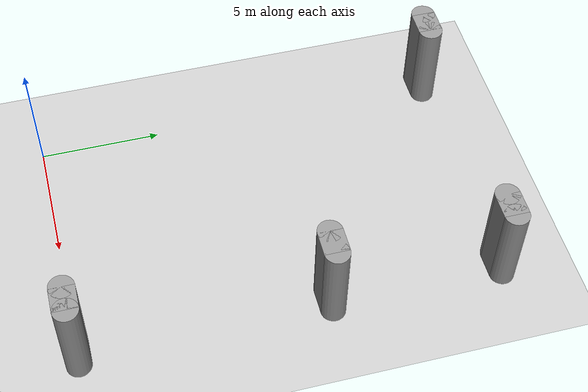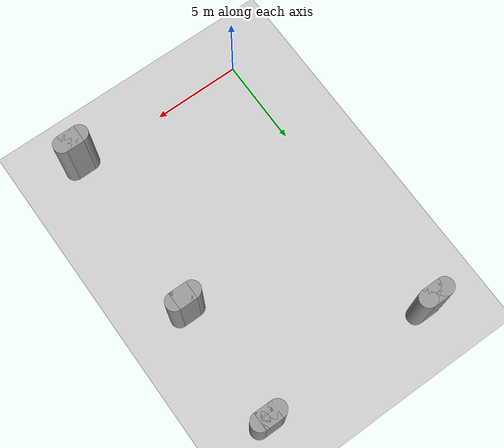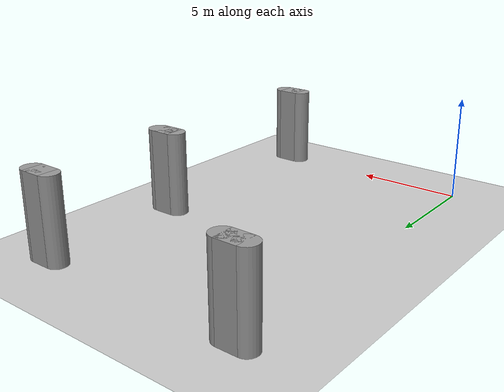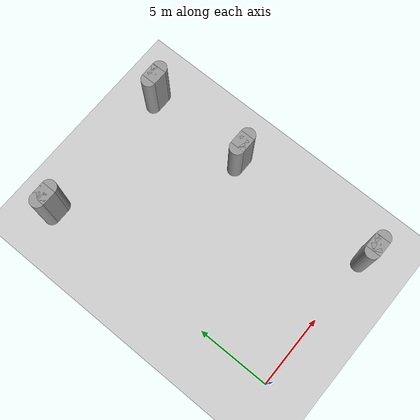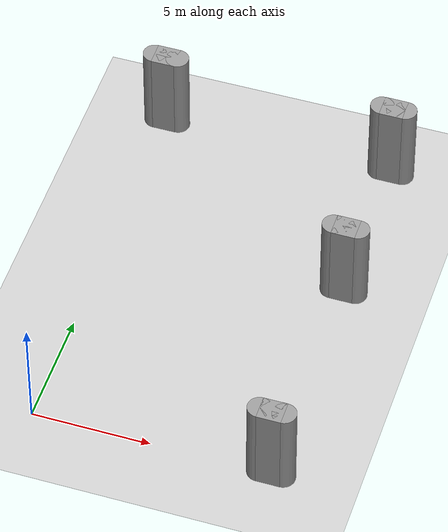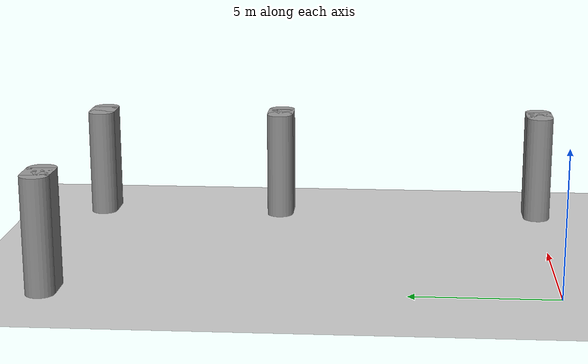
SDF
<sdf version="1.6">
 <world name="default">
  <model name="ground_plane">
   <static>1</static>
   <link name="link">
    <collision name="collision">
     <geometry><plane><normal>0 0 1</normal><size>100 100</size></plane></geometry>
     <surface><friction><ode><mu>100</mu><mu2>50</mu2></ode></friction></surface>
    </collision>
    <visual name="visual">
     <cast_shadows>0</cast_shadows>
     <geometry><plane><normal>0 0 1</normal><size>100 100</size></plane></geometry>
     <material>
      <script><uri>file://media/materials/scripts/gazebo.material</uri><name>Gazebo/Grey</name></script>
     </material>
    </visual>
   </link>
  </model>
  <model name="pillar_clone_6_clone_3">
   <link name="link_0">
    <inertial>
     <mass>1</mass>
     <inertia>
      <ixx>0.166667</ixx>
      <ixy>0</ixy>
      <ixz>0</ixz>
      <iyy>0.166667</iyy>
      <iyz>0</iyz>
      <izz>0.166667</izz>
     </inertia>
    </inertial>
    <kinematic>1</kinematic>
    <visual name="visual">
     <geometry><box><size>1 1 4</size></box></geometry>
     <material>
      <lighting>1</lighting>
      <script><uri>file://media/materials/scripts/gazebo.material</uri><name>Gazebo/Grey</name></script>
      <shader type="pixel"><normal_map>__default__</normal_map></shader>
      <ambient>0.3 0.3 0.3 1</ambient>
      <diffuse>0.7 0.7 0.7 1</diffuse>
      <specular>0.01 0.01 0.01 1</specular>
      <emissive>0 0 0 1</emissive>
     </material>
    </visual>
    <collision name="collision">
     <geometry><box><size>1 1 4</size></box></geometry>
     <surface>
      <friction>
       <ode><mu>1</mu><mu2>1</mu2><fdir1>0 0 0</fdir1><slip1>0</slip1><slip2>0</slip2></ode>
       <torsional>
        <coefficient>1</coefficient>
        <patch_radius>0</patch_radius>
        <surface_radius>0</surface_radius>
        <use_patch_radius>1</use_patch_radius>
        <ode><slip>0</slip></ode>
       </torsional>
      </friction>
      <bounce><restitution_coefficient>0</restitution_coefficient><threshold>1e+06</threshold></bounce>
      <contact>
       <collide_without_contact>0</collide_without_contact>
       <collide_without_contact_bitmask>1</collide_without_contact_bitmask>
       <collide_bitmask>1</collide_bitmask>
       <ode>
        <soft_cfm>0</soft_cfm>
        <soft_erp>0.2</soft_erp>
        <kp>1e+13</kp>
        <kd>1</kd>
        <max_vel>0.01</max_vel>
        <min_depth>0</min_depth>
       </ode>
       <bullet>
        <split_impulse>1</split_impulse>
        <split_impulse_penetration_threshold>-0.01</split_impulse_penetration_threshold>
        <soft_cfm>0</soft_cfm>
        <soft_erp>0.2</soft_erp>
        <kp>1e+13</kp>
        <kd>1</kd>
       </bullet>
      </contact>
     </surface>
    </collision>
   </link>
   <link name="link_1">
    <inertial>
     <mass>1</mass>
     <inertia><ixx>0.145833</ixx><ixy>0</ixy><ixz>0</ixz><iyy>0.145833</iyy><iyz>0</iyz><izz>0.125</izz></inertia>
    </inertial>
    <pose>-0.5 0 0 0 -0 0</pose>
    <kinematic>1</kinematic>
    <visual name="visual">
     <geometry><cylinder><radius>0.5</radius><length>4</length></cylinder></geometry>
     <material>
      <lighting>1</lighting>
      <script><uri>file://media/materials/scripts/gazebo.material</uri><name>Gazebo/Grey</name></script>
      <shader type="pixel"><normal_map>__default__</normal_map></shader>
      <ambient>0.3 0.3 0.3 1</ambient>
      <diffuse>0.7 0.7 0.7 1</diffuse>
      <specular>0.01 0.01 0.01 1</specular>
      <emissive>0 0 0 1</emissive>
     </material>
    </visual>
    <collision name="collision">
     <geometry><cylinder><radius>0.5</radius><length>4</length></cylinder></geometry>
     <surface>
      <friction>
       <ode><mu>1</mu><mu2>1</mu2><fdir1>0 0 0</fdir1><slip1>0</slip1><slip2>0</slip2></ode>
       <torsional>
        <coefficient>1</coefficient>
        <patch_radius>0</patch_radius>
        <surface_radius>0</surface_radius>
        <use_patch_radius>1</use_patch_radius>
        <ode><slip>0</slip></ode>
       </torsional>
      </friction>
      <bounce><restitution_coefficient>0</restitution_coefficient><threshold>1e+06</threshold></bounce>
      <contact>
       <collide_without_contact>0</collide_without_contact>
       <collide_without_contact_bitmask>1</collide_without_contact_bitmask>
       <collide_bitmask>1</collide_bitmask>
       <ode>
        <soft_cfm>0</soft_cfm>
        <soft_erp>0.2</soft_erp>
        <kp>1e+13</kp>
        <kd>1</kd>
        <max_vel>0.01</max_vel>
        <min_depth>0</min_depth>
       </ode>
       <bullet>
        <split_impulse>1</split_impulse>
        <split_impulse_penetration_threshold>-0.01</split_impulse_penetration_threshold>
        <soft_cfm>0</soft_cfm>
        <soft_erp>0.2</soft_erp>
        <kp>1e+13</kp>
        <kd>1</kd>
       </bullet>
      </contact>
     </surface>
    </collision>
   </link>
   <link name="link_2">
    <inertial>
     <mass>1</mass>
     <inertia><ixx>0.145833</ixx><ixy>0</ixy><ixz>0</ixz><iyy>0.145833</iyy><iyz>0</iyz><izz>0.125</izz></inertia>
    </inertial>
    <pose>0.5 0 0 0 -0 0</pose>
    <kinematic>1</kinematic>
    <visual name="visual">
     <geometry><cylinder><radius>0.5</radius><length>4</length></cylinder></geometry>
     <material>
      <lighting>1</lighting>
      <script><uri>file://media/materials/scripts/gazebo.material</uri><name>Gazebo/Grey</name></script>
      <shader type="pixel"><normal_map>__default__</normal_map></shader>
      <ambient>0.3 0.3 0.3 1</ambient>
      <diffuse>0.7 0.7 0.7 1</diffuse>
      <specular>0.01 0.01 0.01 1</specular>
      <emissive>0 0 0 1</emissive>
     </material>
    </visual>
    <collision name="collision">
     <geometry><cylinder><radius>0.5</radius><length>4</length></cylinder></geometry>
     <surface>
      <friction>
       <ode><mu>1</mu><mu2>1</mu2><fdir1>0 0 0</fdir1><slip1>0</slip1><slip2>0</slip2></ode>
       <torsional>
        <coefficient>1</coefficient>
        <patch_radius>0</patch_radius>
        <surface_radius>0</surface_radius>
        <use_patch_radius>1</use_patch_radius>
        <ode><slip>0</slip></ode>
       </torsional>
      </friction>
      <bounce><restitution_coefficient>0</restitution_coefficient><threshold>1e+06</threshold></bounce>
      <contact>
       <collide_without_contact>0</collide_without_contact>
       <collide_without_contact_bitmask>1</collide_without_contact_bitmask>
       <collide_bitmask>1</collide_bitmask>
       <ode>
        <soft_cfm>0</soft_cfm>
        <soft_erp>0.2</soft_erp>
        <kp>1e+13</kp>
        <kd>1</kd>
        <max_vel>0.01</max_vel>
        <min_depth>0</min_depth>
       </ode>
       <bullet>
        <split_impulse>1</split_impulse>
        <split_impulse_penetration_threshold>-0.01</split_impulse_penetration_threshold>
        <soft_cfm>0</soft_cfm>
        <soft_erp>0.2</soft_erp>
        <kp>1e+13</kp>
        <kd>1</kd>
       </bullet>
      </contact>
     </surface>
    </collision>
   </link>
   <static>1</static>
   <pose>10 0 2 0 -0 0</pose>
  </model>
  <model name="pillar_clone_6_clone_17">
   <link name="link_0">
    <inertial>
     <mass>1</mass>
     <inertia>
      <ixx>0.166667</ixx>
      <ixy>0</ixy>
      <ixz>0</ixz>
      <iyy>0.166667</iyy>
      <iyz>0</iyz>
      <izz>0.166667</izz>
     </inertia>
    </inertial>
    <kinematic>1</kinematic>
    <visual name="visual">
     <geometry><box><size>1 1 4</size></box></geometry>
     <material>
      <lighting>1</lighting>
      <script><uri>file://media/materials/scripts/gazebo.material</uri><name>Gazebo/Grey</name></script>
      <shader type="pixel"><normal_map>__default__</normal_map></shader>
      <ambient>0.3 0.3 0.3 1</ambient>
      <diffuse>0.7 0.7 0.7 1</diffuse>
      <specular>0.01 0.01 0.01 1</specular>
      <emissive>0 0 0 1</emissive>
     </material>
    </visual>
    <collision name="collision">
     <geometry><box><size>1 1 4</size></box></geometry>
     <surface>
      <friction>
       <ode><mu>1</mu><mu2>1</mu2><fdir1>0 0 0</fdir1><slip1>0</slip1><slip2>0</slip2></ode>
       <torsional>
        <coefficient>1</coefficient>
        <patch_radius>0</patch_radius>
        <surface_radius>0</surface_radius>
        <use_patch_radius>1</use_patch_radius>
        <ode><slip>0</slip></ode>
       </torsional>
      </friction>
      <bounce><restitution_coefficient>0</restitution_coefficient><threshold>1e+06</threshold></bounce>
      <contact>
       <collide_without_contact>0</collide_without_contact>
       <collide_without_contact_bitmask>1</collide_without_contact_bitmask>
       <collide_bitmask>1</collide_bitmask>
       <ode>
        <soft_cfm>0</soft_cfm>
        <soft_erp>0.2</soft_erp>
        <kp>1e+13</kp>
        <kd>1</kd>
        <max_vel>0.01</max_vel>
        <min_depth>0</min_depth>
       </ode>
       <bullet>
        <split_impulse>1</split_impulse>
        <split_impulse_penetration_threshold>-0.01</split_impulse_penetration_threshold>
        <soft_cfm>0</soft_cfm>
        <soft_erp>0.2</soft_erp>
        <kp>1e+13</kp>
        <kd>1</kd>
       </bullet>
      </contact>
     </surface>
    </collision>
   </link>
   <link name="link_1">
    <inertial>
     <mass>1</mass>
     <inertia><ixx>0.145833</ixx><ixy>0</ixy><ixz>0</ixz><iyy>0.145833</iyy><iyz>0</iyz><izz>0.125</izz></inertia>
    </inertial>
    <pose>-0.5 0 0 0 -0 0</pose>
    <kinematic>1</kinematic>
    <visual name="visual">
     <geometry><cylinder><radius>0.5</radius><length>4</length></cylinder></geometry>
     <material>
      <lighting>1</lighting>
      <script><uri>file://media/materials/scripts/gazebo.material</uri><name>Gazebo/Grey</name></script>
      <shader type="pixel"><normal_map>__default__</normal_map></shader>
      <ambient>0.3 0.3 0.3 1</ambient>
      <diffuse>0.7 0.7 0.7 1</diffuse>
      <specular>0.01 0.01 0.01 1</specular>
      <emissive>0 0 0 1</emissive>
     </material>
    </visual>
    <collision name="collision">
     <geometry><cylinder><radius>0.5</radius><length>4</length></cylinder></geometry>
     <surface>
      <friction>
       <ode><mu>1</mu><mu2>1</mu2><fdir1>0 0 0</fdir1><slip1>0</slip1><slip2>0</slip2></ode>
       <torsional>
        <coefficient>1</coefficient>
        <patch_radius>0</patch_radius>
        <surface_radius>0</surface_radius>
        <use_patch_radius>1</use_patch_radius>
        <ode><slip>0</slip></ode>
       </torsional>
      </friction>
      <bounce><restitution_coefficient>0</restitution_coefficient><threshold>1e+06</threshold></bounce>
      <contact>
       <collide_without_contact>0</collide_without_contact>
       <collide_without_contact_bitmask>1</collide_without_contact_bitmask>
       <collide_bitmask>1</collide_bitmask>
       <ode>
        <soft_cfm>0</soft_cfm>
        <soft_erp>0.2</soft_erp>
        <kp>1e+13</kp>
        <kd>1</kd>
        <max_vel>0.01</max_vel>
        <min_depth>0</min_depth>
       </ode>
       <bullet>
        <split_impulse>1</split_impulse>
        <split_impulse_penetration_threshold>-0.01</split_impulse_penetration_threshold>
        <soft_cfm>0</soft_cfm>
        <soft_erp>0.2</soft_erp>
        <kp>1e+13</kp>
        <kd>1</kd>
       </bullet>
      </contact>
     </surface>
    </collision>
   </link>
   <link name="link_2">
    <inertial>
     <mass>1</mass>
     <inertia><ixx>0.145833</ixx><ixy>0</ixy><ixz>0</ixz><iyy>0.145833</iyy><iyz>0</iyz><izz>0.125</izz></inertia>
    </inertial>
    <pose>0.5 0 0 0 -0 0</pose>
    <kinematic>1</kinematic>
    <visual name="visual">
     <geometry><cylinder><radius>0.5</radius><length>4</length></cylinder></geometry>
     <material>
      <lighting>1</lighting>
      <script><uri>file://media/materials/scripts/gazebo.material</uri><name>Gazebo/Grey</name></script>
      <shader type="pixel"><normal_map>__default__</normal_map></shader>
      <ambient>0.3 0.3 0.3 1</ambient>
      <diffuse>0.7 0.7 0.7 1</diffuse>
      <specular>0.01 0.01 0.01 1</specular>
      <emissive>0 0 0 1</emissive>
     </material>
    </visual>
    <collision name="collision">
     <geometry><cylinder><radius>0.5</radius><length>4</length></cylinder></geometry>
     <surface>
      <friction>
       <ode><mu>1</mu><mu2>1</mu2><fdir1>0 0 0</fdir1><slip1>0</slip1><slip2>0</slip2></ode>
       <torsional>
        <coefficient>1</coefficient>
        <patch_radius>0</patch_radius>
        <surface_radius>0</surface_radius>
        <use_patch_radius>1</use_patch_radius>
        <ode><slip>0</slip></ode>
       </torsional>
      </friction>
      <bounce><restitution_coefficient>0</restitution_coefficient><threshold>1e+06</threshold></bounce>
      <contact>
       <collide_without_contact>0</collide_without_contact>
       <collide_without_contact_bitmask>1</collide_without_contact_bitmask>
       <collide_bitmask>1</collide_bitmask>
       <ode>
        <soft_cfm>0</soft_cfm>
        <soft_erp>0.2</soft_erp>
        <kp>1e+13</kp>
        <kd>1</kd>
        <max_vel>0.01</max_vel>
        <min_depth>0</min_depth>
       </ode>
       <bullet>
        <split_impulse>1</split_impulse>
        <split_impulse_penetration_threshold>-0.01</split_impulse_penetration_threshold>
        <soft_cfm>0</soft_cfm>
        <soft_erp>0.2</soft_erp>
        <kp>1e+13</kp>
        <kd>1</kd>
       </bullet>
      </contact>
     </surface>
    </collision>
   </link>
   <static>1</static>
   <pose>10 10 2 0 -0 0</pose>
  </model>
  <model name="pillar_clone_6_clone_22">
   <link name="link_0">
    <inertial>
     <mass>1</mass>
     <inertia>
      <ixx>0.166667</ixx>
      <ixy>0</ixy>
      <ixz>0</ixz>
      <iyy>0.166667</iyy>
      <iyz>0</iyz>
      <izz>0.166667</izz>
     </inertia>
    </inertial>
    <kinematic>1</kinematic>
    <visual name="visual">
     <geometry><box><size>1 1 4</size></box></geometry>
     <material>
      <lighting>1</lighting>
      <script><uri>file://media/materials/scripts/gazebo.material</uri><name>Gazebo/Grey</name></script>
      <shader type="pixel"><normal_map>__default__</normal_map></shader>
      <ambient>0.3 0.3 0.3 1</ambient>
      <diffuse>0.7 0.7 0.7 1</diffuse>
      <specular>0.01 0.01 0.01 1</specular>
      <emissive>0 0 0 1</emissive>
     </material>
    </visual>
    <collision name="collision">
     <geometry><box><size>1 1 4</size></box></geometry>
     <surface>
      <friction>
       <ode><mu>1</mu><mu2>1</mu2><fdir1>0 0 0</fdir1><slip1>0</slip1><slip2>0</slip2></ode>
       <torsional>
        <coefficient>1</coefficient>
        <patch_radius>0</patch_radius>
        <surface_radius>0</surface_radius>
        <use_patch_radius>1</use_patch_radius>
        <ode><slip>0</slip></ode>
       </torsional>
      </friction>
      <bounce><restitution_coefficient>0</restitution_coefficient><threshold>1e+06</threshold></bounce>
      <contact>
       <collide_without_contact>0</collide_without_contact>
       <collide_without_contact_bitmask>1</collide_without_contact_bitmask>
       <collide_bitmask>1</collide_bitmask>
       <ode>
        <soft_cfm>0</soft_cfm>
        <soft_erp>0.2</soft_erp>
        <kp>1e+13</kp>
        <kd>1</kd>
        <max_vel>0.01</max_vel>
        <min_depth>0</min_depth>
       </ode>
       <bullet>
        <split_impulse>1</split_impulse>
        <split_impulse_penetration_threshold>-0.01</split_impulse_penetration_threshold>
        <soft_cfm>0</soft_cfm>
        <soft_erp>0.2</soft_erp>
        <kp>1e+13</kp>
        <kd>1</kd>
       </bullet>
      </contact>
     </surface>
    </collision>
   </link>
   <link name="link_1">
    <inertial>
     <mass>1</mass>
     <inertia><ixx>0.145833</ixx><ixy>0</ixy><ixz>0</ixz><iyy>0.145833</iyy><iyz>0</iyz><izz>0.125</izz></inertia>
    </inertial>
    <pose>-0.5 0 0 0 -0 0</pose>
    <kinematic>1</kinematic>
    <visual name="visual">
     <geometry><cylinder><radius>0.5</radius><length>4</length></cylinder></geometry>
     <material>
      <lighting>1</lighting>
      <script><uri>file://media/materials/scripts/gazebo.material</uri><name>Gazebo/Grey</name></script>
      <shader type="pixel"><normal_map>__default__</normal_map></shader>
      <ambient>0.3 0.3 0.3 1</ambient>
      <diffuse>0.7 0.7 0.7 1</diffuse>
      <specular>0.01 0.01 0.01 1</specular>
      <emissive>0 0 0 1</emissive>
     </material>
    </visual>
    <collision name="collision">
     <geometry><cylinder><radius>0.5</radius><length>4</length></cylinder></geometry>
     <surface>
      <friction>
       <ode><mu>1</mu><mu2>1</mu2><fdir1>0 0 0</fdir1><slip1>0</slip1><slip2>0</slip2></ode>
       <torsional>
        <coefficient>1</coefficient>
        <patch_radius>0</patch_radius>
        <surface_radius>0</surface_radius>
        <use_patch_radius>1</use_patch_radius>
        <ode><slip>0</slip></ode>
       </torsional>
      </friction>
      <bounce><restitution_coefficient>0</restitution_coefficient><threshold>1e+06</threshold></bounce>
      <contact>
       <collide_without_contact>0</collide_without_contact>
       <collide_without_contact_bitmask>1</collide_without_contact_bitmask>
       <collide_bitmask>1</collide_bitmask>
       <ode>
        <soft_cfm>0</soft_cfm>
        <soft_erp>0.2</soft_erp>
        <kp>1e+13</kp>
        <kd>1</kd>
        <max_vel>0.01</max_vel>
        <min_depth>0</min_depth>
       </ode>
       <bullet>
        <split_impulse>1</split_impulse>
        <split_impulse_penetration_threshold>-0.01</split_impulse_penetration_threshold>
        <soft_cfm>0</soft_cfm>
        <soft_erp>0.2</soft_erp>
        <kp>1e+13</kp>
        <kd>1</kd>
       </bullet>
      </contact>
     </surface>
    </collision>
   </link>
   <link name="link_2">
    <inertial>
     <mass>1</mass>
     <inertia><ixx>0.145833</ixx><ixy>0</ixy><ixz>0</ixz><iyy>0.145833</iyy><iyz>0</iyz><izz>0.125</izz></inertia>
    </inertial>
    <pose>0.5 0 0 0 -0 0</pose>
    <kinematic>1</kinematic>
    <visual name="visual">
     <geometry><cylinder><radius>0.5</radius><length>4</length></cylinder></geometry>
     <material>
      <lighting>1</lighting>
      <script><uri>file://media/materials/scripts/gazebo.material</uri><name>Gazebo/Grey</name></script>
      <shader type="pixel"><normal_map>__default__</normal_map></shader>
      <ambient>0.3 0.3 0.3 1</ambient>
      <diffuse>0.7 0.7 0.7 1</diffuse>
      <specular>0.01 0.01 0.01 1</specular>
      <emissive>0 0 0 1</emissive>
     </material>
    </visual>
    <collision name="collision">
     <geometry><cylinder><radius>0.5</radius><length>4</length></cylinder></geometry>
     <surface>
      <friction>
       <ode><mu>1</mu><mu2>1</mu2><fdir1>0 0 0</fdir1><slip1>0</slip1><slip2>0</slip2></ode>
       <torsional>
        <coefficient>1</coefficient>
        <patch_radius>0</patch_radius>
        <surface_radius>0</surface_radius>
        <use_patch_radius>1</use_patch_radius>
        <ode><slip>0</slip></ode>
       </torsional>
      </friction>
      <bounce><restitution_coefficient>0</restitution_coefficient><threshold>1e+06</threshold></bounce>
      <contact>
       <collide_without_contact>0</collide_without_contact>
       <collide_without_contact_bitmask>1</collide_without_contact_bitmask>
       <collide_bitmask>1</collide_bitmask>
       <ode>
        <soft_cfm>0</soft_cfm>
        <soft_erp>0.2</soft_erp>
        <kp>1e+13</kp>
        <kd>1</kd>
        <max_vel>0.01</max_vel>
        <min_depth>0</min_depth>
       </ode>
       <bullet>
        <split_impulse>1</split_impulse>
        <split_impulse_penetration_threshold>-0.01</split_impulse_penetration_threshold>
        <soft_cfm>0</soft_cfm>
        <soft_erp>0.2</soft_erp>
        <kp>1e+13</kp>
        <kd>1</kd>
       </bullet>
      </contact>
     </surface>
    </collision>
   </link>
   <static>1</static>
   <pose>0 17 2 0 -0 0</pose>
  </model>
  <model name="pillar_clone_6_clone_23">
   <link name="link_0">
    <inertial>
     <mass>1</mass>
     <inertia>
      <ixx>0.166667</ixx>
      <ixy>0</ixy>
      <ixz>0</ixz>
      <iyy>0.166667</iyy>
      <iyz>0</iyz>
      <izz>0.166667</izz>
     </inertia>
    </inertial>
    <kinematic>1</kinematic>
    <visual name="visual">
     <geometry><box><size>1 1 4</size></box></geometry>
     <material>
      <lighting>1</lighting>
      <script><uri>file://media/materials/scripts/gazebo.material</uri><name>Gazebo/Grey</name></script>
      <shader type="pixel"><normal_map>__default__</normal_map></shader>
      <ambient>0.3 0.3 0.3 1</ambient>
      <diffuse>0.7 0.7 0.7 1</diffuse>
      <specular>0.01 0.01 0.01 1</specular>
      <emissive>0 0 0 1</emissive>
     </material>
    </visual>
    <collision name="collision">
     <geometry><box><size>1 1 4</size></box></geometry>
     <surface>
      <friction>
       <ode><mu>1</mu><mu2>1</mu2><fdir1>0 0 0</fdir1><slip1>0</slip1><slip2>0</slip2></ode>
       <torsional>
        <coefficient>1</coefficient>
        <patch_radius>0</patch_radius>
        <surface_radius>0</surface_radius>
        <use_patch_radius>1</use_patch_radius>
        <ode><slip>0</slip></ode>
       </torsional>
      </friction>
      <bounce><restitution_coefficient>0</restitution_coefficient><threshold>1e+06</threshold></bounce>
      <contact>
       <collide_without_contact>0</collide_without_contact>
       <collide_without_contact_bitmask>1</collide_without_contact_bitmask>
       <collide_bitmask>1</collide_bitmask>
       <ode>
        <soft_cfm>0</soft_cfm>
        <soft_erp>0.2</soft_erp>
        <kp>1e+13</kp>
        <kd>1</kd>
        <max_vel>0.01</max_vel>
        <min_depth>0</min_depth>
       </ode>
       <bullet>
        <split_impulse>1</split_impulse>
        <split_impulse_penetration_threshold>-0.01</split_impulse_penetration_threshold>
        <soft_cfm>0</soft_cfm>
        <soft_erp>0.2</soft_erp>
        <kp>1e+13</kp>
        <kd>1</kd>
       </bullet>
      </contact>
     </surface>
    </collision>
   </link>
   <link name="link_1">
    <inertial>
     <mass>1</mass>
     <inertia><ixx>0.145833</ixx><ixy>0</ixy><ixz>0</ixz><iyy>0.145833</iyy><iyz>0</iyz><izz>0.125</izz></inertia>
    </inertial>
    <pose>-0.5 0 0 0 -0 0</pose>
    <kinematic>1</kinematic>
    <visual name="visual">
     <geometry><cylinder><radius>0.5</radius><length>4</length></cylinder></geometry>
     <material>
      <lighting>1</lighting>
      <script><uri>file://media/materials/scripts/gazebo.material</uri><name>Gazebo/Grey</name></script>
      <shader type="pixel"><normal_map>__default__</normal_map></shader>
      <ambient>0.3 0.3 0.3 1</ambient>
      <diffuse>0.7 0.7 0.7 1</diffuse>
      <specular>0.01 0.01 0.01 1</specular>
      <emissive>0 0 0 1</emissive>
     </material>
    </visual>
    <collision name="collision">
     <geometry><cylinder><radius>0.5</radius><length>4</length></cylinder></geometry>
     <surface>
      <friction>
       <ode><mu>1</mu><mu2>1</mu2><fdir1>0 0 0</fdir1><slip1>0</slip1><slip2>0</slip2></ode>
       <torsional>
        <coefficient>1</coefficient>
        <patch_radius>0</patch_radius>
        <surface_radius>0</surface_radius>
        <use_patch_radius>1</use_patch_radius>
        <ode><slip>0</slip></ode>
       </torsional>
      </friction>
      <bounce><restitution_coefficient>0</restitution_coefficient><threshold>1e+06</threshold></bounce>
      <contact>
       <collide_without_contact>0</collide_without_contact>
       <collide_without_contact_bitmask>1</collide_without_contact_bitmask>
       <collide_bitmask>1</collide_bitmask>
       <ode>
        <soft_cfm>0</soft_cfm>
        <soft_erp>0.2</soft_erp>
        <kp>1e+13</kp>
        <kd>1</kd>
        <max_vel>0.01</max_vel>
        <min_depth>0</min_depth>
       </ode>
       <bullet>
        <split_impulse>1</split_impulse>
        <split_impulse_penetration_threshold>-0.01</split_impulse_penetration_threshold>
        <soft_cfm>0</soft_cfm>
        <soft_erp>0.2</soft_erp>
        <kp>1e+13</kp>
        <kd>1</kd>
       </bullet>
      </contact>
     </surface>
    </collision>
   </link>
   <link name="link_2">
    <inertial>
     <mass>1</mass>
     <inertia><ixx>0.145833</ixx><ixy>0</ixy><ixz>0</ixz><iyy>0.145833</iyy><iyz>0</iyz><izz>0.125</izz></inertia>
    </inertial>
    <pose>0.5 0 0 0 -0 0</pose>
    <kinematic>1</kinematic>
    <visual name="visual">
     <geometry><cylinder><radius>0.5</radius><length>4</length></cylinder></geometry>
     <material>
      <lighting>1</lighting>
      <script><uri>file://media/materials/scripts/gazebo.material</uri><name>Gazebo/Grey</name></script>
      <shader type="pixel"><normal_map>__default__</normal_map></shader>
      <ambient>0.3 0.3 0.3 1</ambient>
      <diffuse>0.7 0.7 0.7 1</diffuse>
      <specular>0.01 0.01 0.01 1</specular>
      <emissive>0 0 0 1</emissive>
     </material>
    </visual>
    <collision name="collision">
     <geometry><cylinder><radius>0.5</radius><length>4</length></cylinder></geometry>
     <surface>
      <friction>
       <ode><mu>1</mu><mu2>1</mu2><fdir1>0 0 0</fdir1><slip1>0</slip1><slip2>0</slip2></ode>
       <torsional>
        <coefficient>1</coefficient>
        <patch_radius>0</patch_radius>
        <surface_radius>0</surface_radius>
        <use_patch_radius>1</use_patch_radius>
        <ode><slip>0</slip></ode>
       </torsional>
      </friction>
      <bounce><restitution_coefficient>0</restitution_coefficient><threshold>1e+06</threshold></bounce>
      <contact>
       <collide_without_contact>0</collide_without_contact>
       <collide_without_contact_bitmask>1</collide_without_contact_bitmask>
       <collide_bitmask>1</collide_bitmask>
       <ode>
        <soft_cfm>0</soft_cfm>
        <soft_erp>0.2</soft_erp>
        <kp>1e+13</kp>
        <kd>1</kd>
        <max_vel>0.01</max_vel>
        <min_depth>0</min_depth>
       </ode>
       <bullet>
        <split_impulse>1</split_impulse>
        <split_impulse_penetration_threshold>-0.01</split_impulse_penetration_threshold>
        <soft_cfm>0</soft_cfm>
        <soft_erp>0.2</soft_erp>
        <kp>1e+13</kp>
        <kd>1</kd>
       </bullet>
      </contact>
     </surface>
    </collision>
   </link>
   <static>1</static>
   <pose>10 17 2 0 -0 0</pose>
  </model>
 </world>
</sdf>
